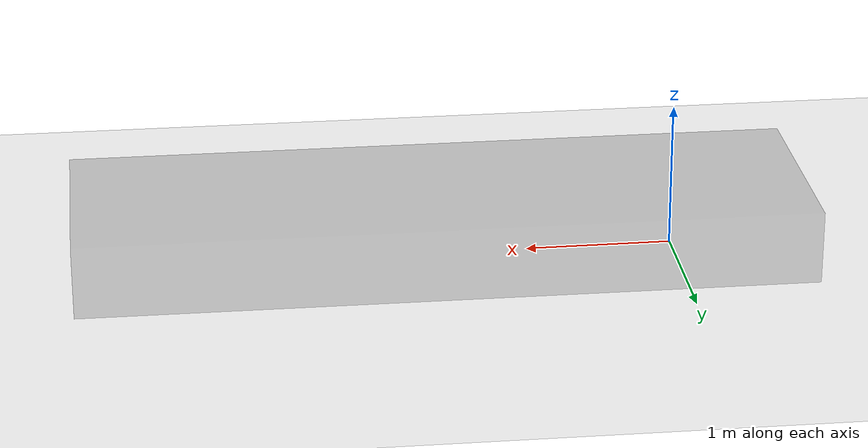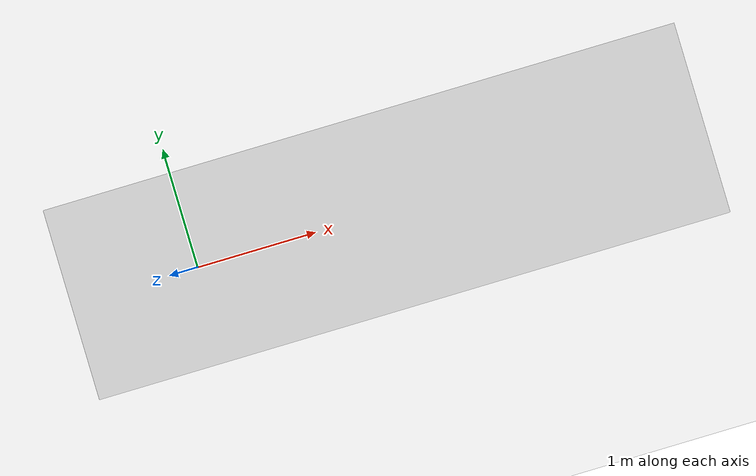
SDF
<?xml version="1.0" ?>
<sdf version="1.2">
  <world name="default">
    <gui>
      <camera name="user_default">
            <pose>1.0 -2.5 1.4 0 0.14 1.8</pose>
      </camera>
    </gui>
    <physics type='ode'>
      <gravity>0 0 -9.81</gravity>
      <!-- max step size has to be a multiple of the desired task rate-->
      <max_step_size>0.001</max_step_size>
      <real_time_update_rate>0.0</real_time_update_rate>
    </physics>
    <!-- A global light source -->
    <include>
      <uri>model://sun</uri>
    </include>
    <!-- A ground plane -->
    <include>
      <uri>model://ground_plane</uri>
    </include>
    <include>
      <name>soft ground</name>
      <uri>model://soft_ground_R</uri>
      <pose>1.6 0 0 0 0 1.57079632679</pose>
    </include>
  </world>
</sdf>

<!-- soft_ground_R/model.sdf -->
<sdf version="1.2">
  <model name="soft_ground_R">
    <static>true</static>
    <link name="link">
      <collision name="collision">
        <pose>0 0 0 0 0 0</pose>
        <geometry>
          <box>
            <size>1.5 5 1</size>
          </box>
        </geometry>

        <surface>
          <friction>
            <ode>
              <mu>1</mu>
              <mu2>1</mu2>
            </ode>
          </friction>
          <contact>
            <ode>
        <kp>3500.0</kp>  <kd>400.0</kd>  <!-- gain set 1 -->
        <!-- gain set 2 -->
          <!-- kd = 0.3 kp --> <!-- gain set 3 -->
            </ode>
          </contact>
        </surface>

      </collision>
      <visual name="visual_1">
	<transparency>0.3</transparency>
        <pose>0 0 0 0 0 0</pose>
        <cast_shadows>false</cast_shadows>
        <geometry>
          <box>
            <size>1.5 5 1</size>
          </box>
        </geometry>
        <material>
	  <lighting>true</lighting>
          <script>
            <uri>model://soft_ground_R/materials/scripts</uri>
            <uri>model://soft_ground_R/materials/textures</uri>
            <name>vrc/mudR</name>
          </script>
        </material>
      </visual>
    </link>
  </model>cc
</sdf>
